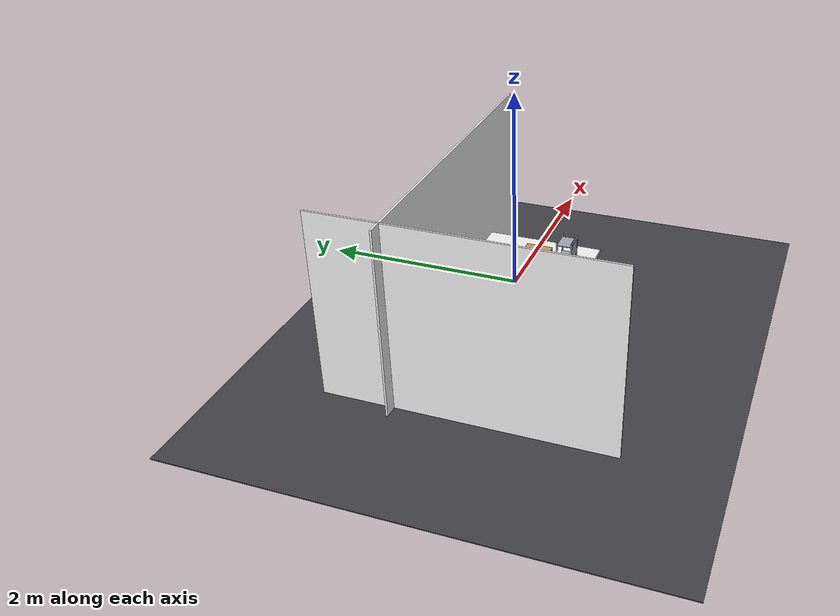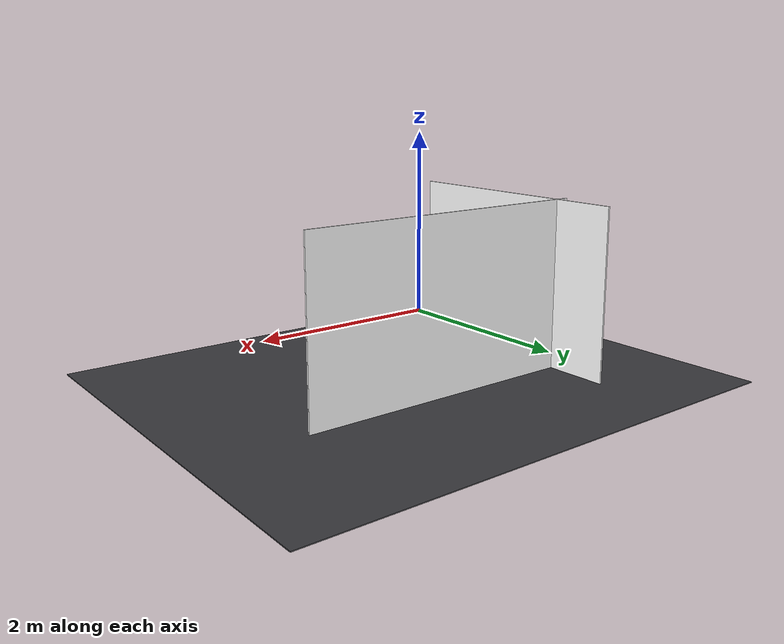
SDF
<sdf version="1.6">
 <world name="default">
  <model name="floor">
   <static>true</static>
   <pose>0.2 0 -0.77 0 0 0</pose>
   <link name="link">
    <collision name="collision"><geometry><box><size>6.0 5.0 0.01</size></box></geometry></collision>
    <visual name="visual">
     <geometry><box><size>6.0 5.0 0.01</size></box></geometry>
     <material>
      <ambient>0.22 0.22 0.24 1</ambient>
      <diffuse>0.26 0.26 0.28 1</diffuse>
      <specular>0.02 0.02 0.02 1</specular>
     </material>
    </visual>
   </link>
  </model>
  <model name="table">
   <static>true</static>
   <link name="link">
    <collision name="tabletop_col">
     <pose>0.2 0 -0.055 0 0 0</pose>
     <geometry><box><size>1.6 1.25 0.03</size></box></geometry>
    </collision>
    <visual name="tabletop_vis">
     <pose>0.2 0 -0.055 0 0 0</pose>
     <geometry><box><size>1.6 1.25 0.03</size></box></geometry>
     <material>
      <ambient>0.94 0.94 0.93 1</ambient>
      <diffuse>0.96 0.96 0.95 1</diffuse>
      <specular>0.4 0.4 0.4 1</specular>
     </material>
    </visual>
    <collision name="leg_fl_col">
     <pose>-0.55 -0.375 -0.42 0 0 0</pose>
     <geometry><cylinder><radius>0.025</radius><length>0.695</length></cylinder></geometry>
    </collision>
    <visual name="leg_fl_vis">
     <pose>-0.55 -0.375 -0.42 0 0 0</pose>
     <geometry><cylinder><radius>0.025</radius><length>0.695</length></cylinder></geometry>
     <material>
      <ambient>0.55 0.55 0.60 1</ambient>
      <diffuse>0.65 0.65 0.70 1</diffuse>
      <specular>0.85 0.85 0.90 1</specular>
     </material>
    </visual>
    <collision name="leg_fr_col">
     <pose>-0.55 0.375 -0.42 0 0 0</pose>
     <geometry><cylinder><radius>0.025</radius><length>0.695</length></cylinder></geometry>
    </collision>
    <visual name="leg_fr_vis">
     <pose>-0.55 0.375 -0.42 0 0 0</pose>
     <geometry><cylinder><radius>0.025</radius><length>0.695</length></cylinder></geometry>
     <material>
      <ambient>0.55 0.55 0.60 1</ambient>
      <diffuse>0.65 0.65 0.70 1</diffuse>
      <specular>0.85 0.85 0.90 1</specular>
     </material>
    </visual>
    <collision name="leg_bl_col">
     <pose>0.95 -0.375 -0.42 0 0 0</pose>
     <geometry><cylinder><radius>0.025</radius><length>0.695</length></cylinder></geometry>
    </collision>
    <visual name="leg_bl_vis">
     <pose>0.95 -0.375 -0.42 0 0 0</pose>
     <geometry><cylinder><radius>0.025</radius><length>0.695</length></cylinder></geometry>
     <material>
      <ambient>0.55 0.55 0.60 1</ambient>
      <diffuse>0.65 0.65 0.70 1</diffuse>
      <specular>0.85 0.85 0.90 1</specular>
     </material>
    </visual>
    <collision name="leg_br_col">
     <pose>0.95 0.375 -0.42 0 0 0</pose>
     <geometry><cylinder><radius>0.025</radius><length>0.695</length></cylinder></geometry>
    </collision>
    <visual name="leg_br_vis">
     <pose>0.95 0.375 -0.42 0 0 0</pose>
     <geometry><cylinder><radius>0.025</radius><length>0.695</length></cylinder></geometry>
     <material>
      <ambient>0.55 0.55 0.60 1</ambient>
      <diffuse>0.65 0.65 0.70 1</diffuse>
      <specular>0.85 0.85 0.90 1</specular>
     </material>
    </visual>
    <visual name="crossbar_front_vis">
     <pose>-0.55 0 -0.68 0 0 0</pose>
     <geometry><box><size>0.04 0.71 0.03</size></box></geometry>
     <material>
      <ambient>0.55 0.55 0.60 1</ambient>
      <diffuse>0.65 0.65 0.70 1</diffuse>
      <specular>0.85 0.85 0.90 1</specular>
     </material>
    </visual>
    <visual name="crossbar_back_vis">
     <pose>0.95 0 -0.68 0 0 0</pose>
     <geometry><box><size>0.04 0.71 0.03</size></box></geometry>
     <material>
      <ambient>0.55 0.55 0.60 1</ambient>
      <diffuse>0.65 0.65 0.70 1</diffuse>
      <specular>0.85 0.85 0.90 1</specular>
     </material>
    </visual>
   </link>
  </model>
  <model name="wooden_plank">
   <static>true</static>
   <pose>0.2 0 -0.02 0 0 0</pose>
   <link name="link">
    <collision name="collision">
     <pose>0 0 -0.10 0 0 0</pose>
     <geometry><box><size>1.158 0.225 0.24</size></box></geometry>
     <surface>
      <friction><ode><mu>0.8</mu><mu2>0.8</mu2></ode></friction>
      <bounce><restitution_coefficient>0</restitution_coefficient><threshold>1e6</threshold></bounce>
      <contact>
       <collide_bitmask>0x0001</collide_bitmask>
       <ode><kp>1000000</kp><kd>100</kd><max_vel>0.01</max_vel><min_depth>0.001</min_depth></ode>
      </contact>
     </surface>
    </collision>
    <visual name="visual">
     <geometry><box><size>1.218 0.285 0.04</size></box></geometry>
     <material>
      <ambient>0.72 0.55 0.33 1</ambient>
      <diffuse>0.76 0.60 0.38 1</diffuse>
      <specular>0.08 0.06 0.04 1</specular>
     </material>
    </visual>
   </link>
  </model>
  <model name="bookshelf">
   <static>true</static>
   <pose>0.30 -0.45 -0.04 0 0 0</pose>
   <link name="link">
    <collision name="post_fl_col">
     <pose>-0.100 -0.075 0.230 0 0 0</pose>
     <geometry><box><size>0.008 0.008 0.460</size></box></geometry>
     <surface><contact><collide_bitmask>0x0001</collide_bitmask></contact></surface>
    </collision>
    <visual name="post_fl_vis">
     <pose>-0.100 -0.075 0.230 0 0 0</pose>
     <geometry><box><size>0.012 0.012 0.460</size></box></geometry>
     <material>
      <ambient>0.60 0.60 0.65 1</ambient>
      <diffuse>0.70 0.70 0.75 1</diffuse>
      <specular>0.85 0.85 0.90 1</specular>
     </material>
    </visual>
    <collision name="post_fr_col">
     <pose>-0.100 0.075 0.230 0 0 0</pose>
     <geometry><box><size>0.008 0.008 0.460</size></box></geometry>
     <surface><contact><collide_bitmask>0x0001</collide_bitmask></contact></surface>
    </collision>
    <visual name="post_fr_vis">
     <pose>-0.100 0.075 0.230 0 0 0</pose>
     <geometry><box><size>0.012 0.012 0.460</size></box></geometry>
     <material>
      <ambient>0.60 0.60 0.65 1</ambient>
      <diffuse>0.70 0.70 0.75 1</diffuse>
      <specular>0.85 0.85 0.90 1</specular>
     </material>
    </visual>
    <collision name="post_bl_col">
     <pose>0.100 -0.075 0.230 0 0 0</pose>
     <geometry><box><size>0.008 0.008 0.460</size></box></geometry>
     <surface><contact><collide_bitmask>0x0001</collide_bitmask></contact></surface>
    </collision>
    <visual name="post_bl_vis">
     <pose>0.100 -0.075 0.230 0 0 0</pose>
     <geometry><box><size>0.012 0.012 0.460</size></box></geometry>
     <material>
      <ambient>0.60 0.60 0.65 1</ambient>
      <diffuse>0.70 0.70 0.75 1</diffuse>
      <specular>0.85 0.85 0.90 1</specular>
     </material>
    </visual>
    <collision name="post_br_col">
     <pose>0.100 0.075 0.230 0 0 0</pose>
     <geometry><box><size>0.008 0.008 0.460</size></box></geometry>
     <surface><contact><collide_bitmask>0x0001</collide_bitmask></contact></surface>
    </collision>
    <visual name="post_br_vis">
     <pose>0.100 0.075 0.230 0 0 0</pose>
     <geometry><box><size>0.012 0.012 0.460</size></box></geometry>
     <material>
      <ambient>0.60 0.60 0.65 1</ambient>
      <diffuse>0.70 0.70 0.75 1</diffuse>
      <specular>0.85 0.85 0.90 1</specular>
     </material>
    </visual>
    <collision name="shelf1_col">
     <pose>0 0 0.100 0 0 0</pose>
     <geometry><box><size>0.188 0.138 0.008</size></box></geometry>
     <surface>
      <friction><ode><mu>0.8</mu><mu2>0.8</mu2></ode></friction>
      <contact>
       <collide_bitmask>0x0001</collide_bitmask>
       <ode><kp>50000</kp><kd>500</kd><max_vel>0.05</max_vel><min_depth>0.002</min_depth></ode>
      </contact>
     </surface>
    </collision>
    <visual name="shelf1_vis">
     <pose>0 0 0.100 0 0 0</pose>
     <geometry><box><size>0.200 0.150 0.008</size></box></geometry>
     <material>
      <ambient>0.55 0.55 0.60 1</ambient>
      <diffuse>0.65 0.65 0.70 1</diffuse>
      <specular>0.85 0.85 0.90 1</specular>
     </material>
    </visual>
    <collision name="shelf2_col">
     <pose>0 0 0.260 0 0 0</pose>
     <geometry><box><size>0.188 0.138 0.008</size></box></geometry>
     <surface>
      <friction><ode><mu>0.8</mu><mu2>0.8</mu2></ode></friction>
      <contact>
       <collide_bitmask>0x0001</collide_bitmask>
       <ode><kp>50000</kp><kd>500</kd><max_vel>0.05</max_vel><min_depth>0.002</min_depth></ode>
      </contact>
     </surface>
    </collision>
    <visual name="shelf2_vis">
     <pose>0 0 0.260 0 0 0</pose>
     <geometry><box><size>0.200 0.150 0.008</size></box></geometry>
     <material>
      <ambient>0.55 0.55 0.60 1</ambient>
      <diffuse>0.65 0.65 0.70 1</diffuse>
      <specular>0.85 0.85 0.90 1</specular>
     </material>
    </visual>
    <collision name="shelf3_col">
     <pose>0 0 0.420 0 0 0</pose>
     <geometry><box><size>0.188 0.138 0.008</size></box></geometry>
     <surface>
      <friction><ode><mu>0.8</mu><mu2>0.8</mu2></ode></friction>
      <contact>
       <collide_bitmask>0x0001</collide_bitmask>
       <ode><kp>50000</kp><kd>500</kd><max_vel>0.05</max_vel><min_depth>0.002</min_depth></ode>
      </contact>
     </surface>
    </collision>
    <visual name="shelf3_vis">
     <pose>0 0 0.420 0 0 0</pose>
     <geometry><box><size>0.200 0.150 0.008</size></box></geometry>
     <material>
      <ambient>0.55 0.55 0.60 1</ambient>
      <diffuse>0.65 0.65 0.70 1</diffuse>
      <specular>0.85 0.85 0.90 1</specular>
     </material>
    </visual>
    <visual name="back_panel_vis">
     <pose>0 -0.071 0.230 0 0 0</pose>
     <geometry><box><size>0.200 0.006 0.460</size></box></geometry>
     <material>
      <ambient>0.55 0.55 0.60 1</ambient>
      <diffuse>0.65 0.65 0.70 1</diffuse>
      <specular>0.85 0.85 0.90 1</specular>
     </material>
    </visual>
   </link>
  </model>
  <model name="back_wall">
   <static>true</static>
   <pose>0.2 0.75 0.23 0 0 0</pose>
   <link name="link">
    <collision name="collision"><geometry><box><size>3.5 0.02 2.0</size></box></geometry></collision>
    <visual name="visual">
     <geometry><box><size>3.5 0.02 2.0</size></box></geometry>
     <material>
      <ambient>0.92 0.92 0.92 1</ambient>
      <diffuse>0.95 0.95 0.95 1</diffuse>
      <specular>0.05 0.05 0.05 1</specular>
     </material>
    </visual>
   </link>
  </model>
  <model name="left_wall">
   <static>true</static>
   <pose>-1.4 0 0.23 0 0 0</pose>
   <link name="link">
    <visual name="visual">
     <geometry><box><size>0.02 3.0 2.0</size></box></geometry>
     <material>
      <ambient>0.92 0.92 0.92 1</ambient>
      <diffuse>0.95 0.95 0.95 1</diffuse>
      <specular>0.05 0.05 0.05 1</specular>
     </material>
    </visual>
   </link>
  </model>
 </world>
</sdf>
